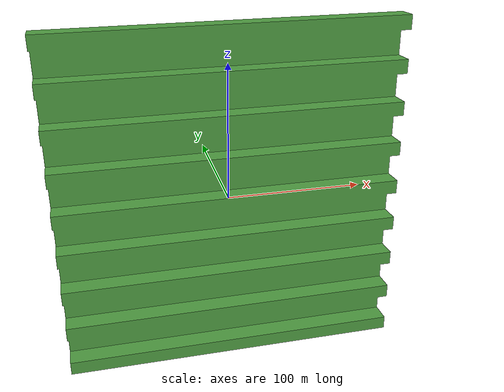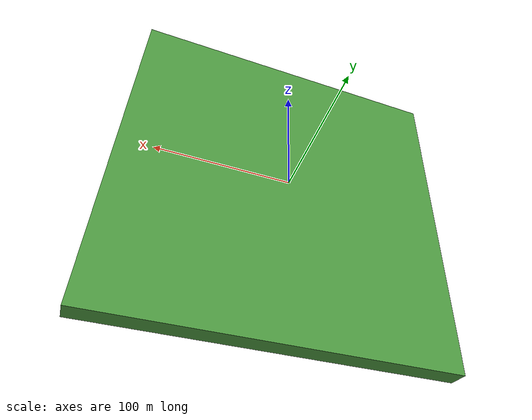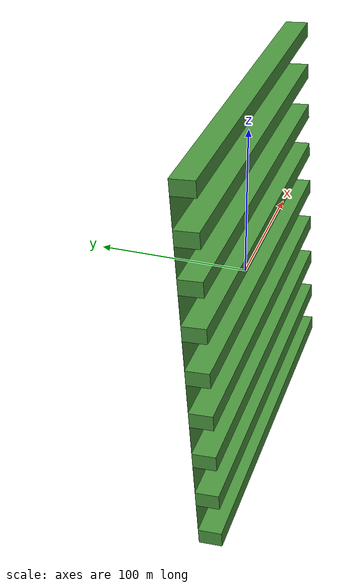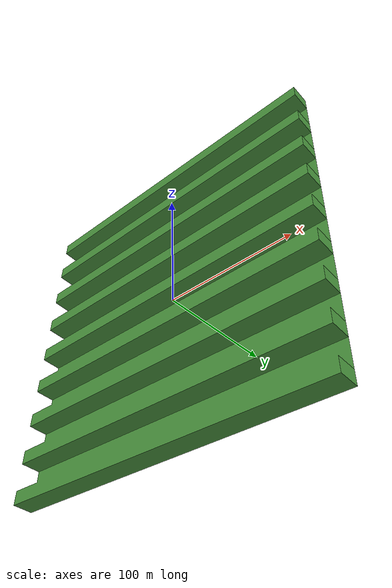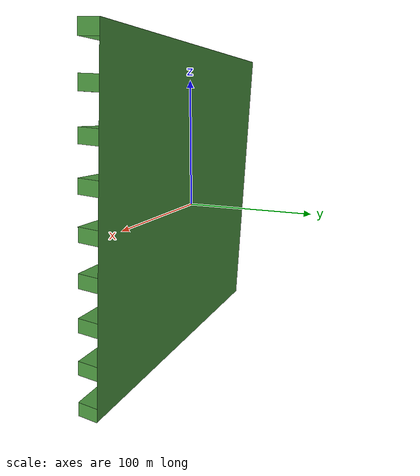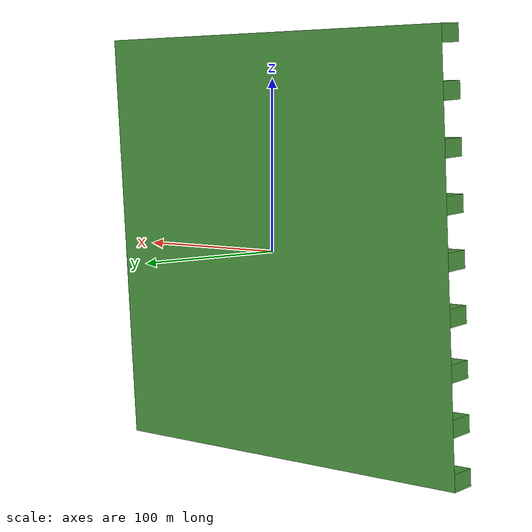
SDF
<?xml version="1.0"?>
<sdf version='1.5'>
  <model name='sqr'>
    <pose>0 0 0 1.507 0 0</pose>
    <static>True</static>
    <link name='base'>
    	<collision name="collision">
        <geometry>
            <mesh><uri>model://sqr/meshes/sqr.obj</uri>
            </mesh>
          </geometry>
      </collision>
        <visual name="visual">
          <geometry>
            <mesh><uri>model://sqr/meshes/sqr.obj</uri>
            </mesh>
          </geometry>
	<material>
            <script>
              <uri>file://media/materials/scripts/gazebo.material</uri>
              <name>Gazebo/Grass</name>
            </script>
          </material>
        </visual>
   </link>
 </model>
</sdf>
